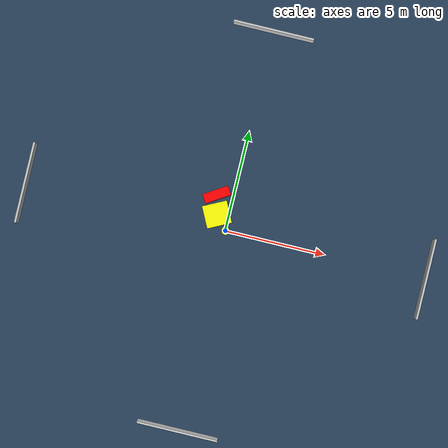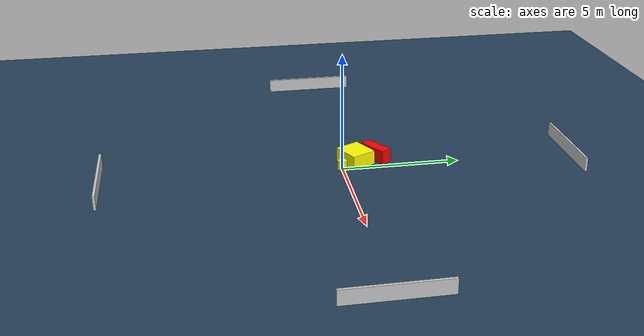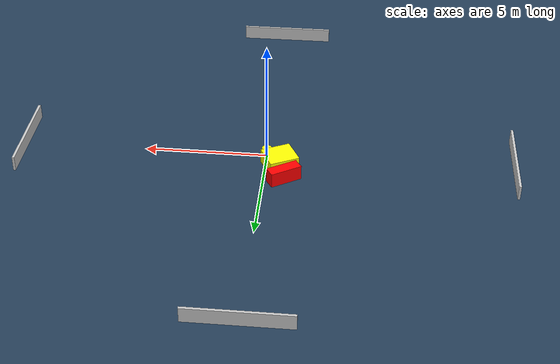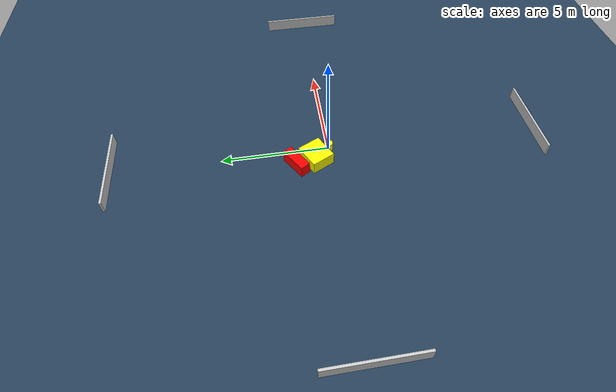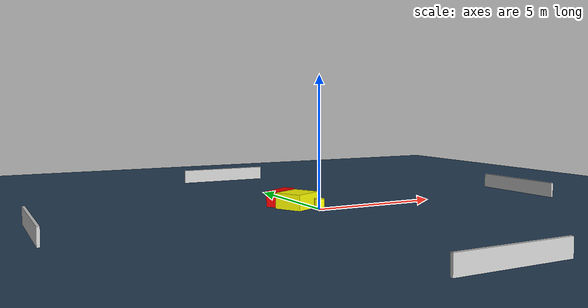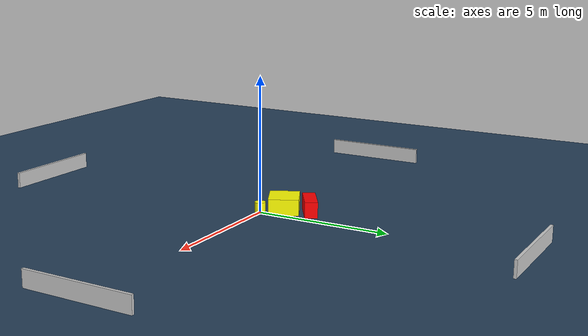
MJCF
<?xml version="1.0" ?>
<mujoco model="generated_environment">
  <option timestep="0.01" integrator="RK4" cone="elliptic"/>
  <default>
    <geom density="1"/>
  </default>
  <asset>
    <texture builtin="gradient" height="3072" name="skybox" rgb1="0.3 0.5 0.7" rgb2="0 0 0" type="skybox" width="512"/>
    <texture builtin="checker" height="300" name="groundplane" rgb1="0.2 0.3 0.4" rgb2="0.1 0.2 0.3" type="2d" width="300"/>
    <material name="groundplane" reflectance="0.2" texrepeat="5 5" texture="groundplane"/>
  </asset>
  <worldbody>
    <light dir="0 0 -1" directional="true" pos="0 0 1.5"/>
    <geom condim="3" friction="0.5 0.005 0.001" material="groundplane" name="floor" pos="0 0 0" size="0 0 0.05" type="plane"/>
    <body name="walls">
      <geom name="wall_1" condim="4" pos="-10.0 0.0 0.3" rgba="0.800000011920929 0.800000011920929 0.800000011920929 1.0" size="0.05 2.0 0.3" type="box"/>
      <geom name="wall_2" condim="4" pos="10.0 0.0 0.3" rgba="0.800000011920929 0.800000011920929 0.800000011920929 1.0" size="0.05 2.0 0.3" type="box"/>
      <geom name="wall_3" condim="4" pos="0.0 -10.0 0.3" rgba="0.800000011920929 0.800000011920929 0.800000011920929 1.0" size="2.0 0.05 0.3" type="box"/>
      <geom name="wall_4" condim="4" pos="0.0 10.0 0.3" rgba="0.800000011920929 0.800000011920929 0.800000011920929 1.0" size="2.0 0.05 0.3" type="box"/>
    </body>
    <body name="robot">
      <joint name="joint_x" type="slide" pos="0 0 0" axis="1 0 0"/>
      <joint name="joint_y" type="slide" pos="0 0 0" axis="0 1 0"/>
      <geom name="robot" type="cylinder" pos="0.0 0.0 0.2" size="0.2 0.2 0.0" mass="5.0" friction="1.0 0.005 0.0001" condim="4" rgba="1.0 1.0 0.0 1.0"/>
    </body>
    <body name="obstacle_1_movable">
      <geom name="obstacle_1_movable" condim="4" pos="-0.5869039333570163 0.6693833015979235 0.3" euler="0 0 116.69976465938502" friction="0.0 0.005 0.001" rgba="1.0 1.0 0.0 1.0" size="0.5547799112023345 0.6153591952538662 0.3" type="box" mass="0.1"/>
      <joint type="free"/>
    </body>
    <body name="obstacle_2_static">
      <geom name="obstacle_2_static" condim="4" pos="-0.8263052197228482 1.6063963381072908 0.3" euler="0 0 122.19420636919729" friction="0.0 0.005 0.001" rgba="1.0 0.0 0.0 1.0" size="0.23674067046601682 0.6573207200809696 0.3" type="box"/>
    </body>
  </worldbody>
  <actuator>
    <motor name="actuator_x" joint="joint_x" gear="1" ctrlrange="-1 1"/>
    <motor name="actuator_y" joint="joint_y" gear="1" ctrlrange="-1 1"/>
  </actuator>
</mujoco>
